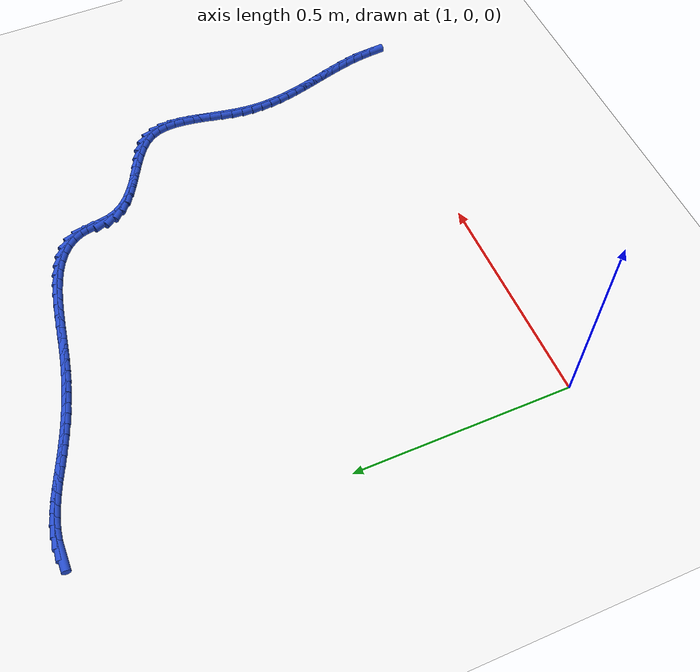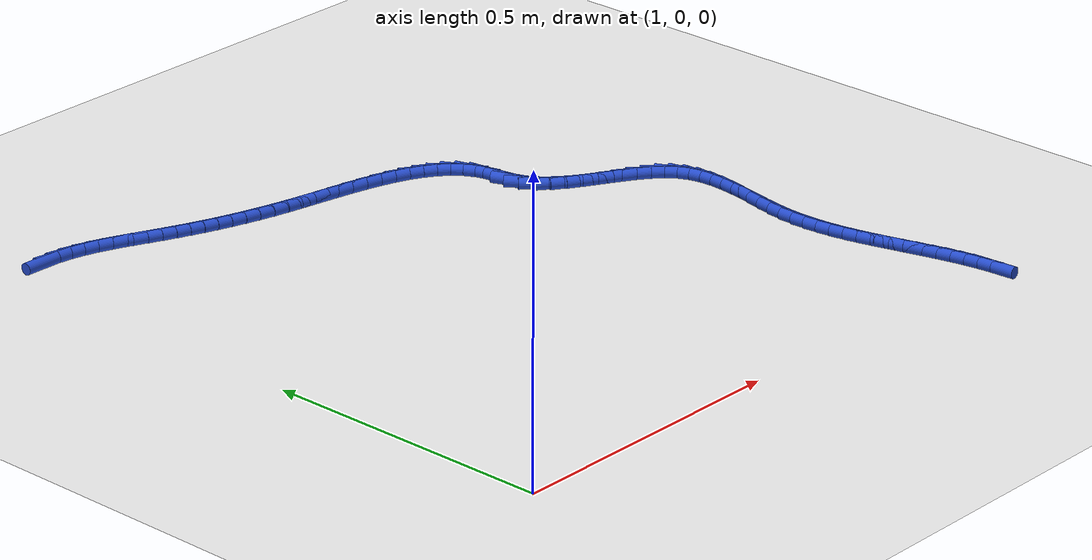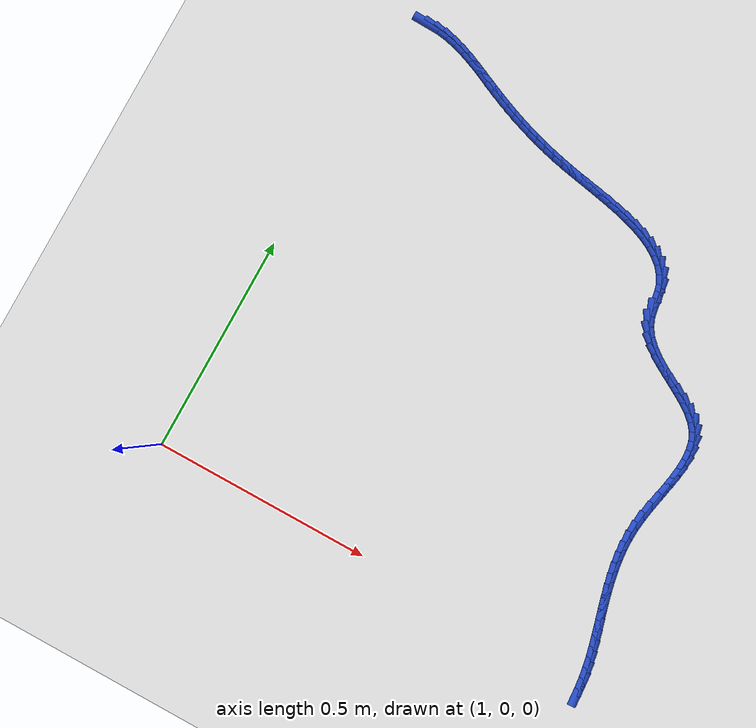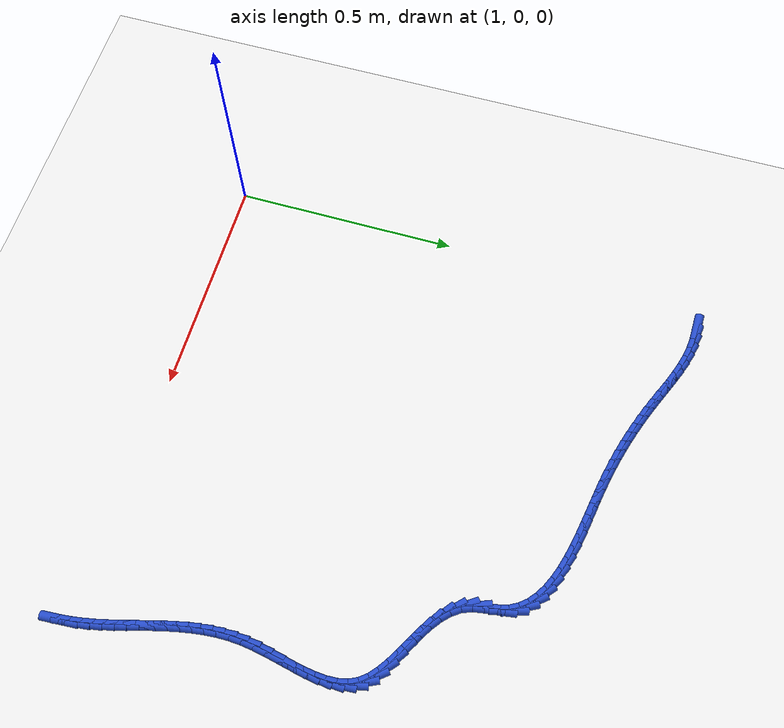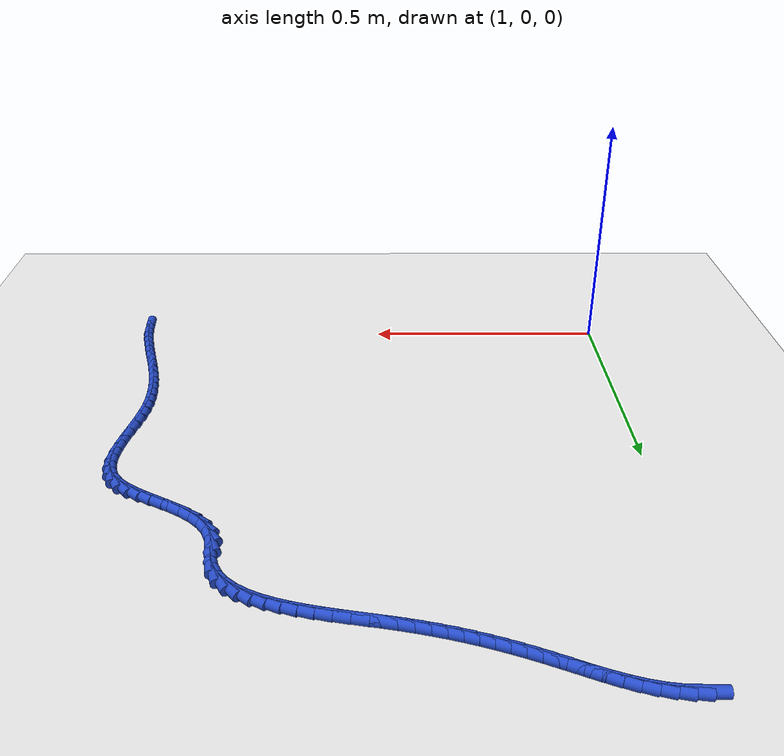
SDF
<sdf version="1.6">
 <world name="default">
  <model name="ground_plane">
   <static>1</static>
   <link name="link">
    <collision name="collision">
     <geometry><plane><normal>0 0 1</normal><size>100 100</size></plane></geometry>
     <surface><friction><ode><mu>100</mu><mu2>50</mu2></ode></friction></surface>
    </collision>
    <visual name="visual">
     <cast_shadows>0</cast_shadows>
     <geometry><plane><normal>0 0 1</normal><size>100 100</size></plane></geometry>
     <material>
      <script><uri>file://media/materials/scripts/gazebo.material</uri><name>Gazebo/WhiteGlow</name></script>
     </material>
    </visual>
   </link>
  </model>
  <model name="line">
   <link name="link_68">
    <pose>1.064506685465328 1.0847753729288272 0.01 0 1.57 -0.030781604601792342</pose>
    <collision name="collision">
     <geometry><cylinder><radius>0.01</radius><length>0.08</length></cylinder></geometry>
    </collision>
    <visual name="visual">
     <material>
      <script><name>Gazebo/Blue</name><uri>file://media/materials/scripts/gazebo.material</uri></script>
     </material>
     <geometry><cylinder><radius>0.01</radius><length>0.08</length></cylinder></geometry>
    </visual>
   </link>
   <link name="link_69">
    <pose>1.088338739323353 1.084041552288704 0.01 0 1.57 -0.13768963541557416</pose>
    <collision name="collision">
     <geometry><cylinder><radius>0.01</radius><length>0.08</length></cylinder></geometry>
    </collision>
    <visual name="visual">
     <material>
      <script><name>Gazebo/Blue</name><uri>file://media/materials/scripts/gazebo.material</uri></script>
     </material>
     <geometry><cylinder><radius>0.01</radius><length>0.08</length></cylinder></geometry>
    </visual>
   </link>
   <link name="link_70">
    <pose>1.1120488443266565 1.0807561281188243 0.01 0 1.57 -0.2277750487837812</pose>
    <collision name="collision">
     <geometry><cylinder><radius>0.01</radius><length>0.08</length></cylinder></geometry>
    </collision>
    <visual name="visual">
     <material>
      <script><name>Gazebo/Blue</name><uri>file://media/materials/scripts/gazebo.material</uri></script>
     </material>
     <geometry><cylinder><radius>0.01</radius><length>0.08</length></cylinder></geometry>
    </visual>
   </link>
   <link name="link_71">
    <pose>1.1356143599075235 1.0752936969737374 0.01 0 1.57 -0.2993117270301868</pose>
    <collision name="collision">
     <geometry><cylinder><radius>0.01</radius><length>0.08</length></cylinder></geometry>
    </collision>
    <visual name="visual">
     <material>
      <script><name>Gazebo/Blue</name><uri>file://media/materials/scripts/gazebo.material</uri></script>
     </material>
     <geometry><cylinder><radius>0.01</radius><length>0.08</length></cylinder></geometry>
    </visual>
   </link>
   <link name="link_72">
    <pose>1.1590164243356156 1.068072234647105 0.01 0 1.57 -0.3532888749653126</pose>
    <collision name="collision">
     <geometry><cylinder><radius>0.01</radius><length>0.08</length></cylinder></geometry>
    </collision>
    <visual name="visual">
     <material>
      <script><name>Gazebo/Blue</name><uri>file://media/materials/scripts/gazebo.material</uri></script>
     </material>
     <geometry><cylinder><radius>0.01</radius><length>0.08</length></cylinder></geometry>
    </visual>
   </link>
   <link name="link_73">
    <pose>1.1822361758805942 1.0595097169325876 0.01 0 1.57 -0.3908803922394566</pose>
    <collision name="collision">
     <geometry><cylinder><radius>0.01</radius><length>0.08</length></cylinder></geometry>
    </collision>
    <visual name="visual">
     <material>
      <script><name>Gazebo/Blue</name><uri>file://media/materials/scripts/gazebo.material</uri></script>
     </material>
     <geometry><cylinder><radius>0.01</radius><length>0.08</length></cylinder></geometry>
    </visual>
   </link>
   <link name="link_74">
    <pose>1.2052547528121202 1.0500241196238471 0.01 0 1.57 -0.41301183716383916</pose>
    <collision name="collision">
     <geometry><cylinder><radius>0.01</radius><length>0.08</length></cylinder></geometry>
    </collision>
    <visual name="visual">
     <material>
      <script><name>Gazebo/Blue</name><uri>file://media/materials/scripts/gazebo.material</uri></script>
     </material>
     <geometry><cylinder><radius>0.01</radius><length>0.08</length></cylinder></geometry>
    </visual>
   </link>
   <link name="link_75">
    <pose>1.2280532933998558 1.040033418514545 0.01 0 1.57 -0.42012239838867854</pose>
    <collision name="collision">
     <geometry><cylinder><radius>0.01</radius><length>0.08</length></cylinder></geometry>
    </collision>
    <visual name="visual">
     <material>
      <script><name>Gazebo/Blue</name><uri>file://media/materials/scripts/gazebo.material</uri></script>
     </material>
     <geometry><cylinder><radius>0.01</radius><length>0.08</length></cylinder></geometry>
    </visual>
   </link>
   <link name="link_76">
    <pose>1.2506129359134626 1.0299555893983423 0.01 0 1.57 -0.4122048784294975</pose>
    <collision name="collision">
     <geometry><cylinder><radius>0.01</radius><length>0.08</length></cylinder></geometry>
    </collision>
    <visual name="visual">
     <material>
      <script><name>Gazebo/Blue</name><uri>file://media/materials/scripts/gazebo.material</uri></script>
     </material>
     <geometry><cylinder><radius>0.01</radius><length>0.08</length></cylinder></geometry>
    </visual>
   </link>
   <link name="link_77">
    <pose>1.2729168796891315 1.0202030759473355 0.01 0 1.57 -0.3946114586932929</pose>
    <collision name="collision">
     <geometry><cylinder><radius>0.01</radius><length>0.08</length></cylinder></geometry>
    </collision>
    <visual name="visual">
     <material>
      <script><name>Gazebo/Blue</name><uri>file://media/materials/scripts/gazebo.material</uri></script>
     </material>
     <geometry><cylinder><radius>0.01</radius><length>0.08</length></cylinder></geometry>
    </visual>
   </link>
   <link name="link_78">
    <pose>1.2950190445514649 1.0109985005282993 0.01 0 1.57 -0.3746449762705941</pose>
    <collision name="collision">
     <geometry><cylinder><radius>0.01</radius><length>0.08</length></cylinder></geometry>
    </collision>
    <visual name="visual">
     <material>
      <script><name>Gazebo/Blue</name><uri>file://media/materials/scripts/gazebo.material</uri></script>
     </material>
     <geometry><cylinder><radius>0.01</radius><length>0.08</length></cylinder></geometry>
    </visual>
   </link>
   <link name="link_79">
    <pose>1.3170601211926019 1.0023315832796775 0.01 0 1.57 -0.35307470863193147</pose>
    <collision name="collision">
     <geometry><cylinder><radius>0.01</radius><length>0.08</length></cylinder></geometry>
    </collision>
    <visual name="visual">
     <material>
      <script><name>Gazebo/Blue</name><uri>file://media/materials/scripts/gazebo.material</uri></script>
     </material>
     <geometry><cylinder><radius>0.01</radius><length>0.08</length></cylinder></geometry>
    </visual>
   </link>
   <link name="link_80">
    <pose>1.339186113603525 0.9941777828812565 0.01 0 1.57 -0.33029726830299727</pose>
    <collision name="collision">
     <geometry><cylinder><radius>0.01</radius><length>0.08</length></cylinder></geometry>
    </collision>
    <visual name="visual">
     <material>
      <script><name>Gazebo/Blue</name><uri>file://media/materials/scripts/gazebo.material</uri></script>
     </material>
     <geometry><cylinder><radius>0.01</radius><length>0.08</length></cylinder></geometry>
    </visual>
   </link>
   <link name="link_81">
    <pose>1.361543025775215 0.9865125580128203 0.01 0 1.57 -0.3067619753542057</pose>
    <collision name="collision">
     <geometry><cylinder><radius>0.01</radius><length>0.08</length></cylinder></geometry>
    </collision>
    <visual name="visual">
     <material>
      <script><name>Gazebo/Blue</name><uri>file://media/materials/scripts/gazebo.material</uri></script>
     </material>
     <geometry><cylinder><radius>0.01</radius><length>0.08</length></cylinder></geometry>
    </visual>
   </link>
   <link name="link_82">
    <pose>1.384276861698654 0.9793113673541546 0.01 0 1.57 -0.2829409233831717</pose>
    <collision name="collision">
     <geometry><cylinder><radius>0.01</radius><length>0.08</length></cylinder></geometry>
    </collision>
    <visual name="visual">
     <material>
      <script><name>Gazebo/Blue</name><uri>file://media/materials/scripts/gazebo.material</uri></script>
     </material>
     <geometry><cylinder><radius>0.01</radius><length>0.08</length></cylinder></geometry>
    </visual>
   </link>
   <link name="link_83">
    <pose>1.4075336253648232 0.9725496695850452 0.01 0 1.57 -0.2592970981651805</pose>
    <collision name="collision">
     <geometry><cylinder><radius>0.01</radius><length>0.08</length></cylinder></geometry>
    </collision>
    <visual name="visual">
     <material>
      <script><name>Gazebo/Blue</name><uri>file://media/materials/scripts/gazebo.material</uri></script>
     </material>
     <geometry><cylinder><radius>0.01</radius><length>0.08</length></cylinder></geometry>
    </visual>
   </link>
   <link name="link_84">
    <pose>1.431459320764704 0.9662029233852776 0.01 0 1.57 -0.2362551209521604</pose>
    <collision name="collision">
     <geometry><cylinder><radius>0.01</radius><length>0.08</length></cylinder></geometry>
    </collision>
    <visual name="visual">
     <material>
      <script><name>Gazebo/Blue</name><uri>file://media/materials/scripts/gazebo.material</uri></script>
     </material>
     <geometry><cylinder><radius>0.01</radius><length>0.08</length></cylinder></geometry>
    </visual>
   </link>
   <link name="link_85">
    <pose>1.456199951889278 0.960246587434637 0.01 0 1.57 -0.21417841681578845</pose>
    <collision name="collision">
     <geometry><cylinder><radius>0.01</radius><length>0.08</length></cylinder></geometry>
    </collision>
    <visual name="visual">
     <material>
      <script><name>Gazebo/Blue</name><uri>file://media/materials/scripts/gazebo.material</uri></script>
     </material>
     <geometry><cylinder><radius>0.01</radius><length>0.08</length></cylinder></geometry>
    </visual>
   </link>
   <link name="link_86">
    <pose>1.4819015227295267 0.9546561204129086 0.01 0 1.57 -0.1942637789842433</pose>
    <collision name="collision">
     <geometry><cylinder><radius>0.01</radius><length>0.08</length></cylinder></geometry>
    </collision>
    <visual name="visual">
     <material>
      <script><name>Gazebo/Blue</name><uri>file://media/materials/scripts/gazebo.material</uri></script>
     </material>
     <geometry><cylinder><radius>0.01</radius><length>0.08</length></cylinder></geometry>
    </visual>
   </link>
   <link name="link_87">
    <pose>1.508667529541381 0.9493900430434282 0.01 0 1.57 -0.18340768399561297</pose>
    <collision name="collision">
     <geometry><cylinder><radius>0.01</radius><length>0.08</length></cylinder></geometry>
    </collision>
    <visual name="visual">
     <material>
      <script><name>Gazebo/Blue</name><uri>file://media/materials/scripts/gazebo.material</uri></script>
     </material>
     <geometry><cylinder><radius>0.01</radius><length>0.08</length></cylinder></geometry>
    </visual>
   </link>
   <link name="link_88">
    <pose>1.5362617839539623 0.9442715227212802 0.01 0 1.57 -0.18390947180093528</pose>
    <collision name="collision">
     <geometry><cylinder><radius>0.01</radius><length>0.08</length></cylinder></geometry>
    </collision>
    <visual name="visual">
     <material>
      <script><name>Gazebo/Blue</name><uri>file://media/materials/scripts/gazebo.material</uri></script>
     </material>
     <geometry><cylinder><radius>0.01</radius><length>0.08</length></cylinder></geometry>
    </visual>
   </link>
   <link name="link_89">
    <pose>1.5642852544526942 0.939058839119989 0.01 0 1.57 -0.1952849488971464</pose>
    <collision name="collision">
     <geometry><cylinder><radius>0.01</radius><length>0.08</length></cylinder></geometry>
    </collision>
    <visual name="visual">
     <material>
      <script><name>Gazebo/Blue</name><uri>file://media/materials/scripts/gazebo.material</uri></script>
     </material>
     <geometry><cylinder><radius>0.01</radius><length>0.08</length></cylinder></geometry>
    </visual>
   </link>
   <link name="link_90">
    <pose>1.5923378849380643 0.9335098636491476 0.01 0 1.57 -0.21783913224263482</pose>
    <collision name="collision">
     <geometry><cylinder><radius>0.01</radius><length>0.08</length></cylinder></geometry>
    </collision>
    <visual name="visual">
     <material>
      <script><name>Gazebo/Blue</name><uri>file://media/materials/scripts/gazebo.material</uri></script>
     </material>
     <geometry><cylinder><radius>0.01</radius><length>0.08</length></cylinder></geometry>
    </visual>
   </link>
   <link name="link_91">
    <pose>1.6200196193105607 0.9273824677183491 0.01 0 1.57 -0.25266670006755443</pose>
    <collision name="collision">
     <geometry><cylinder><radius>0.01</radius><length>0.08</length></cylinder></geometry>
    </collision>
    <visual name="visual">
     <material>
      <script><name>Gazebo/Blue</name><uri>file://media/materials/scripts/gazebo.material</uri></script>
     </material>
     <geometry><cylinder><radius>0.01</radius><length>0.08</length></cylinder></geometry>
    </visual>
   </link>
   <link name="link_92">
    <pose>1.6469304014706712 0.9204345227371873 0.01 0 1.57 -0.301714433888543</pose>
    <collision name="collision">
     <geometry><cylinder><radius>0.01</radius><length>0.08</length></cylinder></geometry>
    </collision>
    <visual name="visual">
     <material>
      <script><name>Gazebo/Blue</name><uri>file://media/materials/scripts/gazebo.material</uri></script>
     </material>
     <geometry><cylinder><radius>0.01</radius><length>0.08</length></cylinder></geometry>
    </visual>
   </link>
   <link name="link_93">
    <pose>1.6726701753188833 0.9124239001152553 0.01 0 1.57 -0.3678862755442262</pose>
    <collision name="collision">
     <geometry><cylinder><radius>0.01</radius><length>0.08</length></cylinder></geometry>
    </collision>
    <visual name="visual">
     <material>
      <script><name>Gazebo/Blue</name><uri>file://media/materials/scripts/gazebo.material</uri></script>
     </material>
     <geometry><cylinder><radius>0.01</radius><length>0.08</length></cylinder></geometry>
    </visual>
   </link>
   <link name="link_94">
    <pose>1.6968388847556855 0.9031084712621464 0.01 0 1.57 -0.45509040537759604</pose>
    <collision name="collision">
     <geometry><cylinder><radius>0.01</radius><length>0.08</length></cylinder></geometry>
    </collision>
    <visual name="visual">
     <material>
      <script><name>Gazebo/Blue</name><uri>file://media/materials/scripts/gazebo.material</uri></script>
     </material>
     <geometry><cylinder><radius>0.01</radius><length>0.08</length></cylinder></geometry>
    </visual>
   </link>
   <link name="link_95">
    <pose>1.7190364736815658 0.8922461075874537 0.01 0 1.57 -0.5679710596809082</pose>
    <collision name="collision">
     <geometry><cylinder><radius>0.01</radius><length>0.08</length></cylinder></geometry>
    </collision>
    <visual name="visual">
     <material>
      <script><name>Gazebo/Blue</name><uri>file://media/materials/scripts/gazebo.material</uri></script>
     </material>
     <geometry><cylinder><radius>0.01</radius><length>0.08</length></cylinder></geometry>
    </visual>
   </link>
   <link name="link_96">
    <pose>1.7388628859970119 0.8795946805007708 0.01 0 1.57 -0.7107819066339953</pose>
    <collision name="collision">
     <geometry><cylinder><radius>0.01</radius><length>0.08</length></cylinder></geometry>
    </collision>
    <visual name="visual">
     <material>
      <script><name>Gazebo/Blue</name><uri>file://media/materials/scripts/gazebo.material</uri></script>
     </material>
     <geometry><cylinder><radius>0.01</radius><length>0.08</length></cylinder></geometry>
    </visual>
   </link>
   <link name="link_97">
    <pose>1.7559180656025115 0.8649120614116914 0.01 0 1.57 -0.8846836602776016</pose>
    <collision name="collision">
     <geometry><cylinder><radius>0.01</radius><length>0.08</length></cylinder></geometry>
    </collision>
    <visual name="visual">
     <material>
      <script><name>Gazebo/Blue</name><uri>file://media/materials/scripts/gazebo.material</uri></script>
     </material>
     <geometry><cylinder><radius>0.01</radius><length>0.08</length></cylinder></geometry>
    </visual>
   </link>
   <link name="link_98">
    <pose>1.7698019563985534 0.8479561217298079 0.01 0 1.57 -1.0837300920006854</pose>
    <collision name="collision">
     <geometry><cylinder><radius>0.01</radius><length>0.08</length></cylinder></geometry>
    </collision>
    <visual name="visual">
     <material>
      <script><name>Gazebo/Blue</name><uri>file://media/materials/scripts/gazebo.material</uri></script>
     </material>
     <geometry><cylinder><radius>0.01</radius><length>0.08</length></cylinder></geometry>
    </visual>
   </link>
   <link name="link_99">
    <pose>1.7801145022856244 0.8284847328647144 0.01 0 1.57 -1.2920177870278964</pose>
    <collision name="collision">
     <geometry><cylinder><radius>0.01</radius><length>0.08</length></cylinder></geometry>
    </collision>
    <visual name="visual">
     <material>
      <script><name>Gazebo/Blue</name><uri>file://media/materials/scripts/gazebo.material</uri></script>
     </material>
     <geometry><cylinder><radius>0.01</radius><length>0.08</length></cylinder></geometry>
    </visual>
   </link>
   <link name="link_100">
    <pose>1.7864739758487185 0.8062668598184115 0.01 0 1.57 -1.4276907195690696</pose>
    <collision name="collision">
     <geometry><cylinder><radius>0.01</radius><length>0.08</length></cylinder></geometry>
    </collision>
    <visual name="visual">
     <material>
      <script><name>Gazebo/Blue</name><uri>file://media/materials/scripts/gazebo.material</uri></script>
     </material>
     <geometry><cylinder><radius>0.01</radius><length>0.08</length></cylinder></geometry>
    </visual>
   </link>
   <link name="link_101">
    <pose>1.7899755875826782 0.781965396842418 0.01 0 1.57 -1.3957964950390143</pose>
    <collision name="collision">
     <geometry><cylinder><radius>0.01</radius><length>0.08</length></cylinder></geometry>
    </collision>
    <visual name="visual">
     <material>
      <script><name>Gazebo/Blue</name><uri>file://media/materials/scripts/gazebo.material</uri></script>
     </material>
     <geometry><cylinder><radius>0.01</radius><length>0.08</length></cylinder></geometry>
    </visual>
   </link>
   <link name="link_102">
    <pose>1.7942519435049094 0.7577790184401371 0.01 0 1.57 -1.197327231532226</pose>
    <collision name="collision">
     <geometry><cylinder><radius>0.01</radius><length>0.08</length></cylinder></geometry>
    </collision>
    <visual name="visual">
     <material>
      <script><name>Gazebo/Blue</name><uri>file://media/materials/scripts/gazebo.material</uri></script>
     </material>
     <geometry><cylinder><radius>0.01</radius><length>0.08</length></cylinder></geometry>
    </visual>
   </link>
   <link name="link_103">
    <pose>1.8028422652085454 0.7358570771015522 0.01 0 1.57 -0.9603356145131157</pose>
    <collision name="collision">
     <geometry><cylinder><radius>0.01</radius><length>0.08</length></cylinder></geometry>
    </collision>
    <visual name="visual">
     <material>
      <script><name>Gazebo/Blue</name><uri>file://media/materials/scripts/gazebo.material</uri></script>
     </material>
     <geometry><cylinder><radius>0.01</radius><length>0.08</length></cylinder></geometry>
    </visual>
   </link>
   <link name="link_104">
    <pose>1.8163082124404764 0.7166091441065278 0.01 0 1.57 -0.7761642084119647</pose>
    <collision name="collision">
     <geometry><cylinder><radius>0.01</radius><length>0.08</length></cylinder></geometry>
    </collision>
    <visual name="visual">
     <material>
      <script><name>Gazebo/Blue</name><uri>file://media/materials/scripts/gazebo.material</uri></script>
     </material>
     <geometry><cylinder><radius>0.01</radius><length>0.08</length></cylinder></geometry>
    </visual>
   </link>
   <link name="link_105">
    <pose>1.83368337108548 0.6995519413735188 0.01 0 1.57 -0.64752122382133</pose>
    <collision name="collision">
     <geometry><cylinder><radius>0.01</radius><length>0.08</length></cylinder></geometry>
    </collision>
    <visual name="visual">
     <material>
      <script><name>Gazebo/Blue</name><uri>file://media/materials/scripts/gazebo.material</uri></script>
     </material>
     <geometry><cylinder><radius>0.01</radius><length>0.08</length></cylinder></geometry>
    </visual>
   </link>
   <link name="link_106">
    <pose>1.8539888483591356 0.6841948995688345 0.01 0 1.57 -0.5662163038929778</pose>
    <collision name="collision">
     <geometry><cylinder><radius>0.01</radius><length>0.08</length></cylinder></geometry>
    </collision>
    <visual name="visual">
     <material>
      <script><name>Gazebo/Blue</name><uri>file://media/materials/scripts/gazebo.material</uri></script>
     </material>
     <geometry><cylinder><radius>0.01</radius><length>0.08</length></cylinder></geometry>
    </visual>
   </link>
   <link name="link_107">
    <pose>1.8762457514770199 0.670047449358783 0.01 0 1.57 -0.5241444643894384</pose>
    <collision name="collision">
     <geometry><cylinder><radius>0.01</radius><length>0.08</length></cylinder></geometry>
    </collision>
    <visual name="visual">
     <material>
      <script><name>Gazebo/Blue</name><uri>file://media/materials/scripts/gazebo.material</uri></script>
     </material>
     <geometry><cylinder><radius>0.01</radius><length>0.08</length></cylinder></geometry>
    </visual>
   </link>
   <link name="link_108">
    <pose>1.899475187654712 0.6566190214096734 0.01 0 1.57 -0.5168593547797463</pose>
    <collision name="collision">
     <geometry><cylinder><radius>0.01</radius><length>0.08</length></cylinder></geometry>
    </collision>
    <visual name="visual">
     <material>
      <script><name>Gazebo/Blue</name><uri>file://media/materials/scripts/gazebo.material</uri></script>
     </material>
     <geometry><cylinder><radius>0.01</radius><length>0.08</length></cylinder></geometry>
    </visual>
   </link>
   <link name="link_109">
    <pose>1.9226982641077897 0.6434190463878141 0.01 0 1.57 -0.5443580169836203</pose>
    <collision name="collision">
     <geometry><cylinder><radius>0.01</radius><length>0.08</length></cylinder></geometry>
    </collision>
    <visual name="visual">
     <material>
      <script><name>Gazebo/Blue</name><uri>file://media/materials/scripts/gazebo.material</uri></script>
     </material>
     <geometry><cylinder><radius>0.01</radius><length>0.08</length></cylinder></geometry>
    </visual>
   </link>
   <link name="link_110">
    <pose>1.9449360880518312 0.6299569549595148 0.01 0 1.57 -0.6114936354805173</pose>
    <collision name="collision">
     <geometry><cylinder><radius>0.01</radius><length>0.08</length></cylinder></geometry>
    </collision>
    <visual name="visual">
     <material>
      <script><name>Gazebo/Blue</name><uri>file://media/materials/scripts/gazebo.material</uri></script>
     </material>
     <geometry><cylinder><radius>0.01</radius><length>0.08</length></cylinder></geometry>
    </visual>
   </link>
   <link name="link_111">
    <pose>1.965209766702414 0.6157421777910833 0.01 0 1.57 -0.7283486956243249</pose>
    <collision name="collision">
     <geometry><cylinder><radius>0.01</radius><length>0.08</length></cylinder></geometry>
    </collision>
    <visual name="visual">
     <material>
      <script><name>Gazebo/Blue</name><uri>file://media/materials/scripts/gazebo.material</uri></script>
     </material>
     <geometry><cylinder><radius>0.01</radius><length>0.08</length></cylinder></geometry>
    </visual>
   </link>
   <link name="link_112">
    <pose>1.982540407275117 0.600284145548829 0.01 0 1.57 -0.9084001950835334</pose>
    <collision name="collision">
     <geometry><cylinder><radius>0.01</radius><length>0.08</length></cylinder></geometry>
    </collision>
    <visual name="visual">
     <material>
      <script><name>Gazebo/Blue</name><uri>file://media/materials/scripts/gazebo.material</uri></script>
     </material>
     <geometry><cylinder><radius>0.01</radius><length>0.08</length></cylinder></geometry>
    </visual>
   </link>
   <link name="link_113">
    <pose>1.9959491938394174 0.5830923243086747 0.01 0 1.57 -1.1403233587545116</pose>
    <collision name="collision">
     <geometry><cylinder><radius>0.01</radius><length>0.08</length></cylinder></geometry>
    </collision>
    <visual name="visual">
     <material>
      <script><name>Gazebo/Blue</name><uri>file://media/materials/scripts/gazebo.material</uri></script>
     </material>
     <geometry><cylinder><radius>0.01</radius><length>0.08</length></cylinder></geometry>
    </visual>
   </link>
   <link name="link_114">
    <pose>2.00479377714258 0.5638312035802516 0.01 0 1.57 -1.350105978501776</pose>
    <collision name="collision">
     <geometry><cylinder><radius>0.01</radius><length>0.08</length></cylinder></geometry>
    </collision>
    <visual name="visual">
     <material>
      <script><name>Gazebo/Blue</name><uri>file://media/materials/scripts/gazebo.material</uri></script>
     </material>
     <geometry><cylinder><radius>0.01</radius><length>0.08</length></cylinder></geometry>
    </visual>
   </link>
   <link name="link_115">
    <pose>2.009539873068332 0.542675802068399 0.01 0 1.57 -1.5119661289211632</pose>
    <collision name="collision">
     <geometry><cylinder><radius>0.01</radius><length>0.08</length></cylinder></geometry>
    </collision>
    <visual name="visual">
     <material>
      <script><name>Gazebo/Blue</name><uri>file://media/materials/scripts/gazebo.material</uri></script>
     </material>
     <geometry><cylinder><radius>0.01</radius><length>0.08</length></cylinder></geometry>
    </visual>
   </link>
   <link name="link_116">
    <pose>2.0108809677820543 0.5199060812062842 0.01 0 1.57 1.5140031750796756</pose>
    <collision name="collision">
     <geometry><cylinder><radius>0.01</radius><length>0.08</length></cylinder></geometry>
    </collision>
    <visual name="visual">
     <material>
      <script><name>Gazebo/Blue</name><uri>file://media/materials/scripts/gazebo.material</uri></script>
     </material>
     <geometry><cylinder><radius>0.01</radius><length>0.08</length></cylinder></geometry>
    </visual>
   </link>
   <link name="link_117">
    <pose>2.0095105474491244 0.49580200242707295 0.01 0 1.57 1.436917755469142</pose>
    <collision name="collision">
     <geometry><cylinder><radius>0.01</radius><length>0.08</length></cylinder></geometry>
    </collision>
    <visual name="visual">
     <material>
      <script><name>Gazebo/Blue</name><uri>file://media/materials/scripts/gazebo.material</uri></script>
     </material>
     <geometry><cylinder><radius>0.01</radius><length>0.08</length></cylinder></geometry>
    </visual>
   </link>
   <link name="link_118">
    <pose>2.006122098234922 0.470643527163933 0.01 0 1.57 1.3910205681962484</pose>
    <collision name="collision">
     <geometry><cylinder><radius>0.01</radius><length>0.08</length></cylinder></geometry>
    </collision>
    <visual name="visual">
     <material>
      <script><name>Gazebo/Blue</name><uri>file://media/materials/scripts/gazebo.material</uri></script>
     </material>
     <geometry><cylinder><radius>0.01</radius><length>0.08</length></cylinder></geometry>
    </visual>
   </link>
   <link name="link_119">
    <pose>2.0014091063048274 0.4447106168500306 0.01 0 1.57 1.37127059552892</pose>
    <collision name="collision">
     <geometry><cylinder><radius>0.01</radius><length>0.08</length></cylinder></geometry>
    </collision>
    <visual name="visual">
     <material>
      <script><name>Gazebo/Blue</name><uri>file://media/materials/scripts/gazebo.material</uri></script>
     </material>
     <geometry><cylinder><radius>0.01</radius><length>0.08</length></cylinder></geometry>
    </visual>
   </link>
   <link name="link_120">
    <pose>1.9960650578242185 0.4182832329185325 0.01 0 1.57 1.3750889733787472</pose>
    <collision name="collision">
     <geometry><cylinder><radius>0.01</radius><length>0.08</length></cylinder></geometry>
    </collision>
    <visual name="visual">
     <material>
      <script><name>Gazebo/Blue</name><uri>file://media/materials/scripts/gazebo.material</uri></script>
     </material>
     <geometry><cylinder><radius>0.01</radius><length>0.08</length></cylinder></geometry>
    </visual>
   </link>
   <link name="link_121">
    <pose>1.9907834389584758 0.3916413368026056 0.01 0 1.57 1.402124330635459</pose>
    <collision name="collision">
     <geometry><cylinder><radius>0.01</radius><length>0.08</length></cylinder></geometry>
    </collision>
    <visual name="visual">
     <material>
      <script><name>Gazebo/Blue</name><uri>file://media/materials/scripts/gazebo.material</uri></script>
     </material>
     <geometry><cylinder><radius>0.01</radius><length>0.08</length></cylinder></geometry>
    </visual>
   </link>
   <link name="link_122">
    <pose>1.9862577358729778 0.36506488993541614 0.01 0 1.57 1.4540116660420406</pose>
    <collision name="collision">
     <geometry><cylinder><radius>0.01</radius><length>0.08</length></cylinder></geometry>
    </collision>
    <visual name="visual">
     <material>
      <script><name>Gazebo/Blue</name><uri>file://media/materials/scripts/gazebo.material</uri></script>
     </material>
     <geometry><cylinder><radius>0.01</radius><length>0.08</length></cylinder></geometry>
    </visual>
   </link>
   <link name="link_123">
    <pose>1.9831803009218296 0.33883343538762223 0.01 0 1.57 1.5243848146936645</pose>
    <collision name="collision">
     <geometry><cylinder><radius>0.01</radius><length>0.08</length></cylinder></geometry>
    </collision>
    <visual name="visual">
     <material>
      <script><name>Gazebo/Blue</name><uri>file://media/materials/scripts/gazebo.material</uri></script>
     </material>
     <geometry><cylinder><radius>0.01</radius><length>0.08</length></cylinder></geometry>
    </visual>
   </link>
   <link name="link_124">
    <pose>1.9819865884122168 0.3131317239889383 0.01 0 1.57 -1.549215806109062</pose>
    <collision name="collision">
     <geometry><cylinder><radius>0.01</radius><length>0.08</length></cylinder></geometry>
    </collision>
    <visual name="visual">
     <material>
      <script><name>Gazebo/Blue</name><uri>file://media/materials/scripts/gazebo.material</uri></script>
     </material>
     <geometry><cylinder><radius>0.01</radius><length>0.08</length></cylinder></geometry>
    </visual>
   </link>
   <link name="link_125">
    <pose>1.9825305405709246 0.28792993571539816 0.01 0 1.57 -1.4879705675307322</pose>
    <collision name="collision">
     <geometry><cylinder><radius>0.01</radius><length>0.08</length></cylinder></geometry>
    </collision>
    <visual name="visual">
     <material>
      <script><name>Gazebo/Blue</name><uri>file://media/materials/scripts/gazebo.material</uri></script>
     </material>
     <geometry><cylinder><radius>0.01</radius><length>0.08</length></cylinder></geometry>
    </visual>
   </link>
   <link name="link_126">
    <pose>1.9845861084612164 0.26316873478089975 0.01 0 1.57 -1.4346003721280294</pose>
    <collision name="collision">
     <geometry><cylinder><radius>0.01</radius><length>0.08</length></cylinder></geometry>
    </collision>
    <visual name="visual">
     <material>
      <script><name>Gazebo/Blue</name><uri>file://media/materials/scripts/gazebo.material</uri></script>
     </material>
     <geometry><cylinder><radius>0.01</radius><length>0.08</length></cylinder></geometry>
    </visual>
   </link>
   <link name="link_127">
    <pose>1.9879272431463562 0.23878878539934278 0.01 0 1.57 -1.389878202285806</pose>
    <collision name="collision">
     <geometry><cylinder><radius>0.01</radius><length>0.08</length></cylinder></geometry>
    </collision>
    <visual name="visual">
     <material>
      <script><name>Gazebo/Blue</name><uri>file://media/materials/scripts/gazebo.material</uri></script>
     </material>
     <geometry><cylinder><radius>0.01</radius><length>0.08</length></cylinder></geometry>
    </visual>
   </link>
   <link name="link_128">
    <pose>1.9923278956896076 0.21473075178462522 0.01 0 1.57 -1.3542812299097076</pose>
    <collision name="collision">
     <geometry><cylinder><radius>0.01</radius><length>0.08</length></cylinder></geometry>
    </collision>
    <visual name="visual">
     <material>
      <script><name>Gazebo/Blue</name><uri>file://media/materials/scripts/gazebo.material</uri></script>
     </material>
     <geometry><cylinder><radius>0.01</radius><length>0.08</length></cylinder></geometry>
    </visual>
   </link>
   <link name="link_129">
    <pose>1.9975620171542348 0.1909352981506458 0.01 0 1.57 -1.3280733507604305</pose>
    <collision name="collision">
     <geometry><cylinder><radius>0.01</radius><length>0.08</length></cylinder></geometry>
    </collision>
    <visual name="visual">
     <material>
      <script><name>Gazebo/Blue</name><uri>file://media/materials/scripts/gazebo.material</uri></script>
     </material>
     <geometry><cylinder><radius>0.01</radius><length>0.08</length></cylinder></geometry>
    </visual>
   </link>
   <link name="link_130">
    <pose>2.0034035586035004 0.16734308871130305 0.01 0 1.57 -1.3113875015841614</pose>
    <collision name="collision">
     <geometry><cylinder><radius>0.01</radius><length>0.08</length></cylinder></geometry>
    </collision>
    <visual name="visual">
     <material>
      <script><name>Gazebo/Blue</name><uri>file://media/materials/scripts/gazebo.material</uri></script>
     </material>
     <geometry><cylinder><radius>0.01</radius><length>0.08</length></cylinder></geometry>
    </visual>
   </link>
   <link name="link_131">
    <pose>2.00962647110067 0.14389478768049535 0.01 0 1.57 -1.3042929683745976</pose>
    <collision name="collision">
     <geometry><cylinder><radius>0.01</radius><length>0.08</length></cylinder></geometry>
    </collision>
    <visual name="visual">
     <material>
      <script><name>Gazebo/Blue</name><uri>file://media/materials/scripts/gazebo.material</uri></script>
     </material>
     <geometry><cylinder><radius>0.01</radius><length>0.08</length></cylinder></geometry>
    </visual>
   </link>
   <link name="link_132">
    <pose>2.016004705709006 0.12053105927212188 0.01 0 1.57 -1.3068402955539589</pose>
    <collision name="collision">
     <geometry><cylinder><radius>0.01</radius><length>0.08</length></cylinder></geometry>
    </collision>
    <visual name="visual">
     <material>
      <script><name>Gazebo/Blue</name><uri>file://media/materials/scripts/gazebo.material</uri></script>
     </material>
     <geometry><cylinder><radius>0.01</radius><length>0.08</length></cylinder></geometry>
    </visual>
   </link>
   <link name="link_133">
    <pose>2.0223122134917717 0.097192567700081 0.01 0 1.57 -1.3190807787645733</pose>
    <collision name="collision">
     <geometry><cylinder><radius>0.01</radius><length>0.08</length></cylinder></geometry>
    </collision>
    <visual name="visual">
     <material>
      <script><name>Gazebo/Blue</name><uri>file://media/materials/scripts/gazebo.material</uri></script>
     </material>
     <geometry><cylinder><radius>0.01</radius><length>0.08</length></cylinder></geometry>
    </visual>
   </link>
   <link name="link_134">
    <pose>2.028322945512232 0.07381997717827131 0.01 0 1.57 -1.3410592146755678</pose>
    <collision name="collision">
     <geometry><cylinder><radius>0.01</radius><length>0.08</length></cylinder></geometry>
    </collision>
    <visual name="visual">
     <material>
      <script><name>Gazebo/Blue</name><uri>file://media/materials/scripts/gazebo.material</uri></script>
     </material>
     <geometry><cylinder><radius>0.01</radius><length>0.08</length></cylinder></geometry>
    </visual>
   </link>
   <link name="link_135">
    <pose>2.0338108528336503 0.050353951920591035 0.01 0 1.57 -1.3727790070687431</pose>
    <collision name="collision">
     <geometry><cylinder><radius>0.01</radius><length>0.08</length></cylinder></geometry>
    </collision>
    <visual name="visual">
     <material>
      <script><name>Gazebo/Blue</name><uri>file://media/materials/scripts/gazebo.material</uri></script>
     </material>
     <geometry><cylinder><radius>0.01</radius><length>0.08</length></cylinder></geometry>
    </visual>
   </link>
   <link name="link_136">
    <pose>2.03854988651929 0.026735156140939513 0.01 0 1.57 -1.414073798181645</pose>
    <collision name="collision">
     <geometry><cylinder><radius>0.01</radius><length>0.08</length></cylinder></geometry>
    </collision>
    <visual name="visual">
     <material>
      <script><name>Gazebo/Blue</name><uri>file://media/materials/scripts/gazebo.material</uri></script>
     </material>
     <geometry><cylinder><radius>0.01</radius><length>0.08</length></cylinder></geometry>
    </visual>
   </link>
   <link name="link_137">
    <pose>2.042315528434865 0.00290475445985556 0.01 0 1.57 -1.460085825777355</pose>
    <collision name="collision">
     <geometry><cylinder><radius>0.01</radius><length>0.08</length></cylinder></geometry>
    </collision>
    <visual name="visual">
     <material>
      <script><name>Gazebo/Blue</name><uri>file://media/materials/scripts/gazebo.material</uri></script>
     </material>
     <geometry><cylinder><radius>0.01</radius><length>0.08</length></cylinder></geometry>
    </visual>
   </link>
   <link name="link_138">
    <pose>2.044990792234352 -0.02116093725125616 0.01 0 1.57 -1.5031419887316104</pose>
    <collision name="collision">
     <geometry><cylinder><radius>0.01</radius><length>0.08</length></cylinder></geometry>
    </collision>
    <visual name="visual">
     <material>
      <script><name>Gazebo/Blue</name><uri>file://media/materials/scripts/gazebo.material</uri></script>
     </material>
     <geometry><cylinder><radius>0.01</radius><length>0.08</length></cylinder></geometry>
    </visual>
   </link>
  </model>
 </world>
</sdf>
